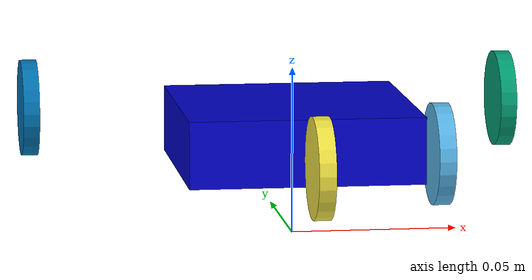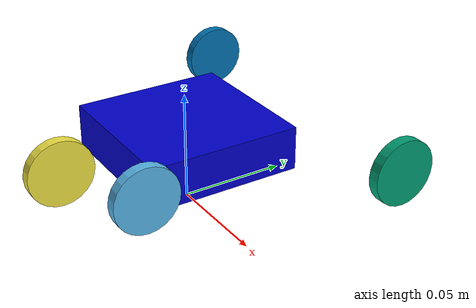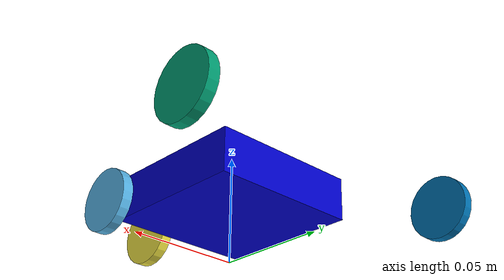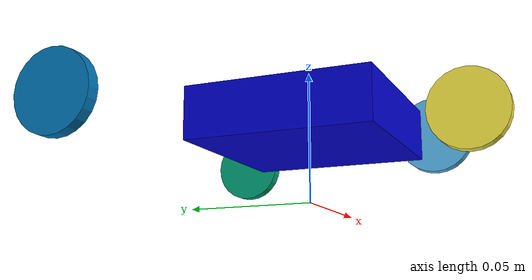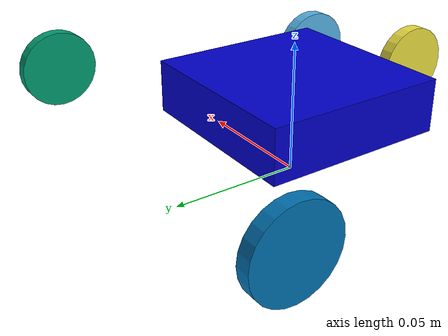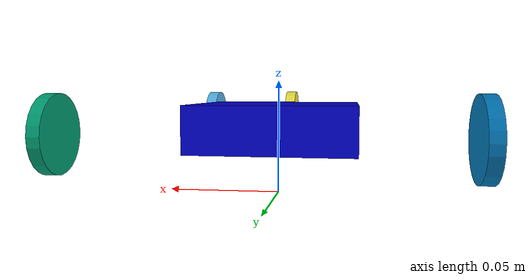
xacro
<?xml version="1.0"?>
<robot name="myrobot2" xmlns:xacro="http://www.ros.org/wiki/xacro">

   <material name="blue">
     <color rgba="0 0 0.8 1"/>
   </material>
   <material name="white">
     <color rgba="1 1 1 1"/>
   </material>
   <material name = "black">
     <color rgba = "0 0 0 1"/>
   </material>

   <link name="link_chassis">
    <visual name = "chassis_visual">
      <origin rpy="0 0 0" xyz="0 0 0.03"/>
      <geometry>
        <box size = "0.07 0.07 0.02"/>
      </geometry>
      <material name = "blue"/>
    </visual>

    <collision name = "chassis_collision">
	<origin rpy = "0 0 0" xyz = "0 0 0.03"/>
        <geometry>
          <box size = "0.07 0.07 0.02"/>
        </geometry>
    </collision>

    <inertial>
      <mass value="0.5"/>
      <inertia ixx="0.00022083" ixy="0" ixz="0" iyy="0.00022083" iyz="0" izz="0.00040833"/>
    </inertial>
   </link>

   <gazebo reference='chasis'>
     <material>Gazebo/Orange</material>
   </gazebo>

   <!-- fornt_right_wheel-->
   <link name = "front_right_wheel">
     <inertial>
       <mass value = "0.2"/>
       <inertia ixx="1.17e-06" ixy="0" ixz="0" iyy="1.17e-06" iyz="0" izz="2.25e-06"/>
      </inertial>

     <visual name = "front_right_wheel_visual">
       <origin rpy = "0 1.5707 0" xyz = "0.019 -0.02 0.015"/>
       <geometry>
          <cylinder length="0.005" radius="0.015"/>
       </geometry>
     </visual>

     <collision name = "front_right_wheel_collision">
	<origin rpy = "0 1.5707 0" xyz = "0.019 -0.02 0.015"/>
	<geometry>
	   <cylinder length="0.005" radius="0.015"/>
	</geometry>
     </collision>

     <material name = "white"/>
    </link>

   <joint name="joint_front_right_wheel" type="continuous">
     <origin rpy="0 0 0" xyz="0.019 -0.02 0.015"/>
     <parent link="link_chassis"/>
     <child link="front_right_wheel"/>
     <axis rpy="0 0 0" xyz="1 0 0"/>
     <limit effort="5" velocity="5"/>
     <joint_properties damping="0.0" friction="0.0"/>
   </joint>

   <transmission name="trans_front_right_wheel">
      <type>transmission_interface/SimpleTransmission</type>
      <actuator name="front_right_wheel_motor">
	<hardwareInterface>VelocityJointInterface</hardwareInterface>
        <mechanicalReduction>7</mechanicalReduction>
      </actuator>
      <joint name="joint_front_right_wheel">
        <hardwareInterface>VelocityJointInterface</hardwareInterface>
      </joint>
    </transmission>

   <!-- front_left_wheel"-->
   <link name = "front_left_wheel">
     <visual>
       <origin rpy="0 1.5707 0" xyz="0.0375 0.03 0.015"/>
       <geometry>
          <cylinder length="0.005" radius="0.015"/>
       </geometry>
     </visual>

     <collision name = "front_left_wheel_collision">
       <origin rpy="0 1.5707 0" xyz="0.0375 0.03 0.015"/>
       <geometry>
          <cylinder length="0.005" radius="0.015"/>
       </geometry>
     </collision>

     <inertial>
       <mass value="0.2"/>
       <inertia ixx="1.17e-06" ixy="0" ixz="0" iyy="1.17e-06" iyz="0" izz="2.25e-06"/>
     </inertial>
     <material name = "white"/>
   </link>

   <joint name="joint_front_left_wheel" type="continuous">
     <origin rpy="0 0 0" xyz="0.0375 0.03 0.015"/>
     <child link="front_left_wheel"/>
     <parent link="link_chassis"/>
     <axis rpy="0 0 0" xyz="1 0 0"/>
     <limit effort="6" velocity="7"/>
     <joint_properties damping="0.0" friction="0.0"/>
   </joint>

   <transmission name="trans_front_left_wheel">
      <type>transmission_interface/SimpleTransmission</type>
      <actuator name="front_left_wheel_motor">
	<hardwareInterface>VelocityJointInterface</hardwareInterface>
        <mechanicalReduction>7</mechanicalReduction>
      </actuator>
      <joint name="joint_front_left_wheel">
        <hardwareInterface>VelocityJointInterface</hardwareInterface>
      </joint>
    </transmission>

   <!-- back_right_wheel"-->
   <link name = "back_right_wheel">
     <visual>
       <origin rpy="0 1.5707 0" xyz="-0.0375 -0.03 0.015"/>
       <geometry>
          <cylinder length="0.005" radius="0.015"/>
       </geometry>
     </visual>

     <collision>
	<origin rpy="0 1.5707 0" xyz="0.0375 -0.03 0.015"/>
        <geometry>
          <cylinder length="0.005" radius="0.015"/>
        </geometry>
     </collision>

     <inertial>
       <mass value="0.2"/>
       <inertia ixx="1.17e-06" ixy="0" ixz="0" iyy="1.17e-06" iyz="0" izz="2.25e-06"/>
     </inertial>
     <material name = "black"/>
   </link>

   <joint name="joint_back_right_wheel" type="continuous">
     <origin rpy="0 0 0" xyz="0.0375 -0.03 0.015"/>
     <child link="back_right_wheel"/>
     <parent link="link_chassis"/>
     <axis rpy="0 0 0" xyz="1 0 0"/>
     <limit effort="50" velocity="6"/>
     <joint_properties damping="0.0" friction="0.0"/>
   </joint>

   <transmission name="trans_back_right_wheel">
      <type>transmission_interface/SimpleTransmission</type>
      <actuator name="back_right_wheel_motor">
        <mechanicalReduction>7</mechanicalReduction>
	<hardwareInterface>VelocityJointInterface</hardwareInterface>
      </actuator>
      <joint name="joint_back_right_wheel">
        <hardwareInterface>VelocityJointInterface</hardwareInterface>
      </joint>
    </transmission>

   <!-- back_left_wheel-->
   <link name = "back_left_wheel">
     <visual>
       <origin rpy="0 1.5707 0" xyz="-0.0375 0.03 0.015"/>
       <geometry>
          <cylinder length="0.005" radius="0.015"/>
       </geometry>
     </visual>

     <collision anme = "back_left_wheel_collision">
	<origin rpy="0 1.5707 0" xyz="-0.0375 0.03 0.015"/>
        <geometry>
          <cylinder length="0.005" radius="0.015"/>
        </geometry>
     </collision>

     <inertial>
       <mass value="0.2"/>
       <inertia ixx="1.17e-06" ixy="0" ixz="0" iyy="1.17e-06" iyz="0" izz="2.25e-06"/>
     </inertial>
     <material name = "black"/>
   </link>

   <joint name="joint_back_left_wheel" type="continuous">
     <origin rpy="0 0 0" xyz="-0.0375 0.03 0.015"/>
     <child link="back_left_wheel"/>
     <parent link="link_chassis"/>
     <axis rpy="0 0 0" xyz="1 0 0"/>
     <limit effort="50" velocity="0.5"/>
     <joint_properties damping="0.0" friction="0.0"/>
   </joint>

   <transmission name="trans_back_left_wheel">
      <type>transmission_interface/SimpleTransmission</type>
      <actuator name="back_left_wheel_motor">
        <mechanicalReduction>7</mechanicalReduction>
	<hardwareInterface>VelocityJointInterface</hardwareInterface>
      </actuator>
      <joint name="joint_back_left_wheel">
        <hardwareInterface>VelocityJointInterface</hardwareInterface>
      </joint>
    </transmission>

   <gazebo>
     <plugin name="skid_steer_drive_controller" filename="libgazebo_ros_skid_steer_drive.so">
        <robotNamespace>/</robotNamespace>
        <alwaysOn>true</alwaysOn>
	<updateRate>20</updateRate>
	<leftFrontJoint>joint_front_left_wheel</leftFrontJoint>
	<rightFrontJoint>joint_front_right_wheel</rightFrontJoint>
	<leftRearJoint>joint_back_left_wheel</leftRearJoint>
	<rightRearJoint>joint_back_right_wheel</rightRearJoint>
	<wheelSeparation>1</wheelSeparation>
	<wheelDiameter>2</wheelDiameter>
	<torque>0.1</torque>
	<commandTopic>cmd_vel</commandTopic>
	<robotBaseFrame>link_chassis</robotBaseFrame>
	<odometryTopic>odom</odometryTopic>
	<odometryFrame>odom</odometryFrame>
	<broadcastTF>1</broadcastTF>
	<covariance_x>0</covariance_x>
	<covariance_y>0</covariance_y>
    	<covariance_yaw>0</covariance_yaw>

     </plugin>
   </gazebo>

</robot>
